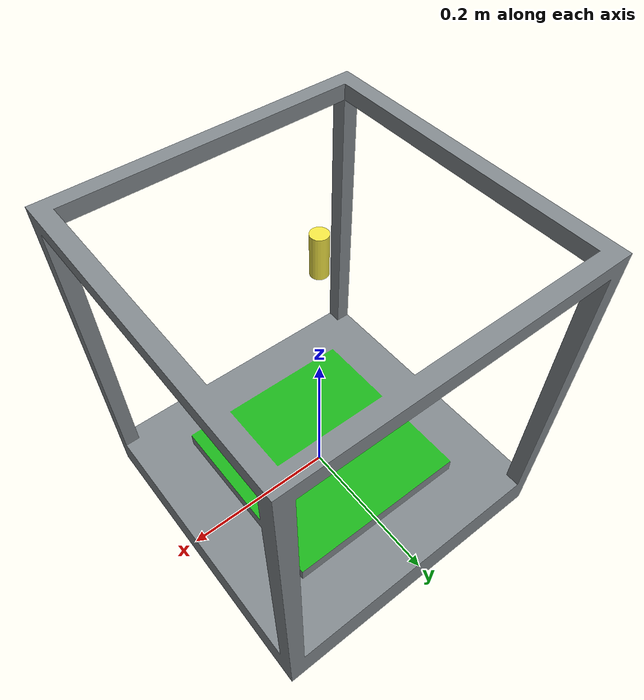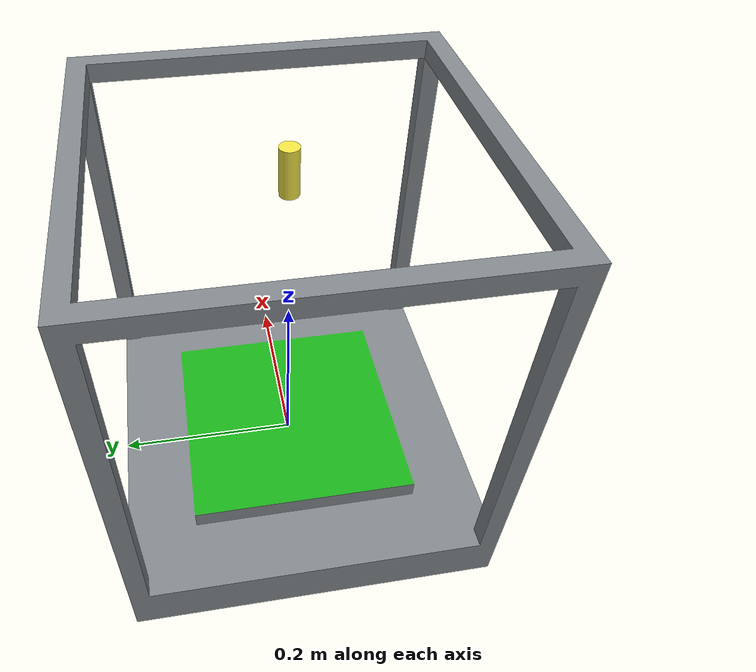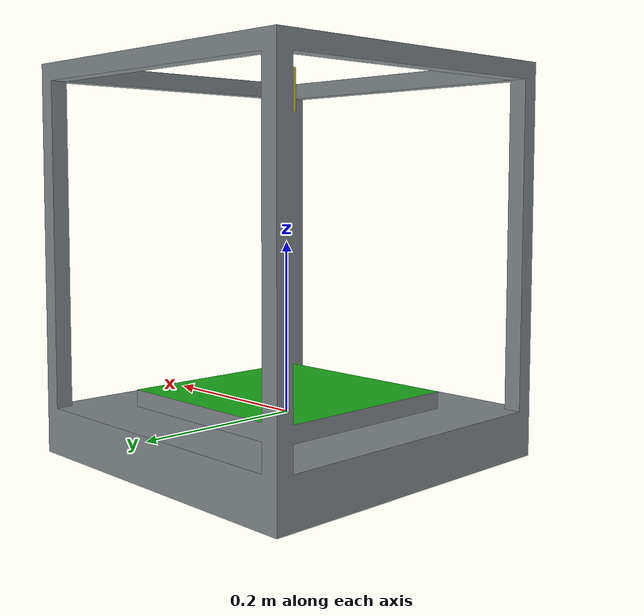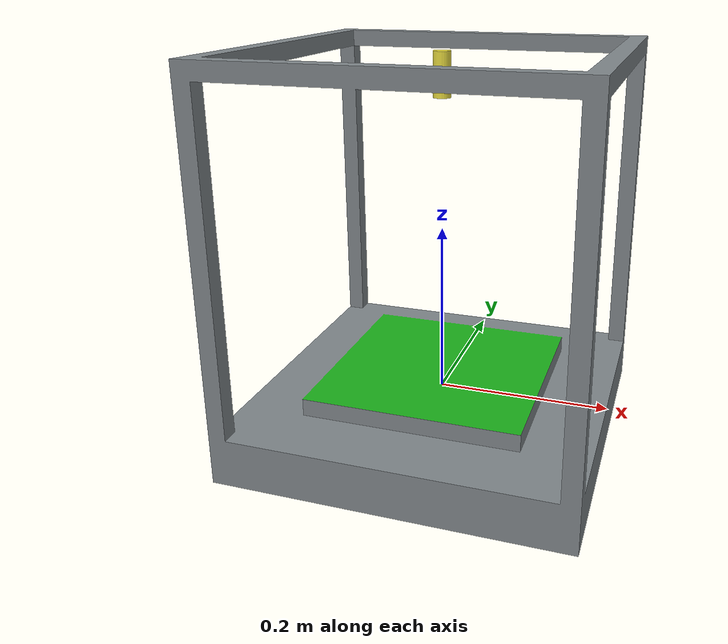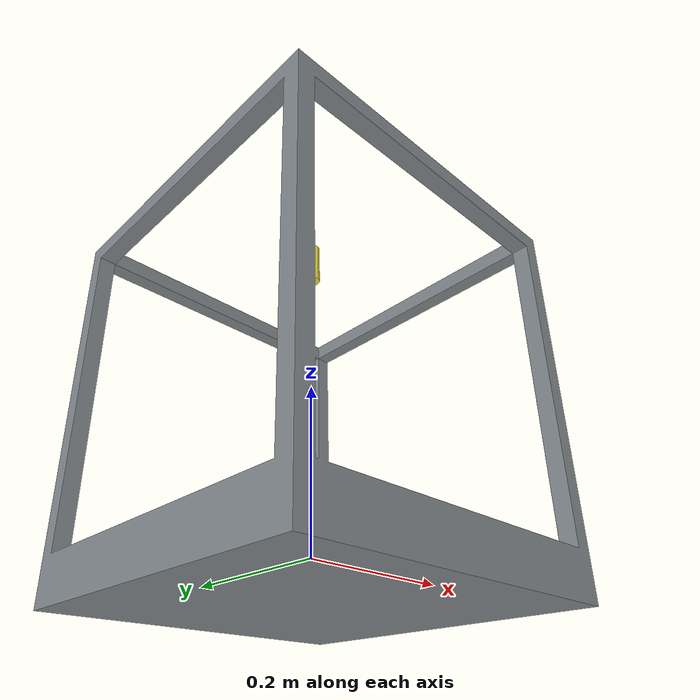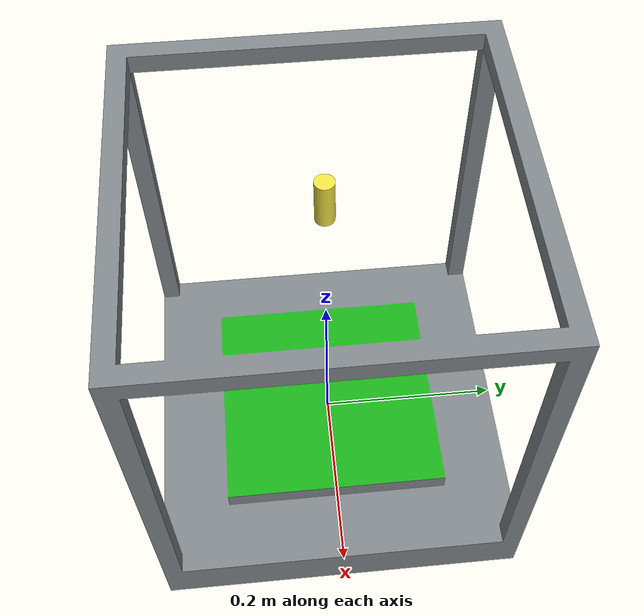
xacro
<?xml version="1.0"?>
<robot name="printer" xmlns:xacro="http://www.ros.org/wiki/xacro">
  <xacro:property name="plate_height" value="0.025" />
  <xacro:property name="plate_length" value="0.25" />
  <xacro:property name="extruder_radius" value="0.01" />
  <xacro:property name="extruder_length" value="0.05" />
  <xacro:property name="extruder_max_height" value="0.35" />
  <link name="base_link">
    <visual>
      <geometry>
        <mesh filename="package://move_printer/urdf/printer.dae"/>
      </geometry>
      <origin rpy="${-pi/2} 0 0" xyz="0 0 0"/>
    </visual>
  </link>
  <link name="extruder_link_virt1" />
  <link name="extruder_link_virt2" />
  <link name="extruder_link">
    <visual>
      <geometry>
        <cylinder radius="${extruder_radius}" length="${extruder_length}"/>
      </geometry>
      <origin rpy="0 0 0" xyz="0 0 ${extruder_length/2}"/>
    </visual>
  </link>

  <joint name="joint1" type="prismatic">
    <parent link="base_link"/>
    <child link="extruder_link_virt1"/>
    <origin rpy="0 0 0" xyz="0 0 0"/>
    <limit lower="${-plate_length/2}" upper="${plate_length/2}" effort="1000.0" velocity="0.1" />
    <axis xyz="1 0 0" />
  </joint>
  <joint name="joint2" type="prismatic">
    <parent link="extruder_link_virt1"/>
    <child link="extruder_link_virt2"/>
    <origin rpy="0 0 0" xyz="0 0 0"/>
    <limit lower="${-plate_length/2}" upper="${plate_length/2}" effort="1000.0" velocity="0.1" />
    <axis xyz="0 1 0" />
  </joint>
  <joint name="joint3" type="prismatic">
    <parent link="extruder_link_virt2"/>
    <child link="extruder_link"/>
    <origin rpy="0 0 0" xyz="0 0 0.35"/>
    <limit lower="${-extruder_max_height}" upper="0" effort="1000.0" velocity="0.1" />
    <axis xyz="0 0 1" />
  </joint>
</robot>
